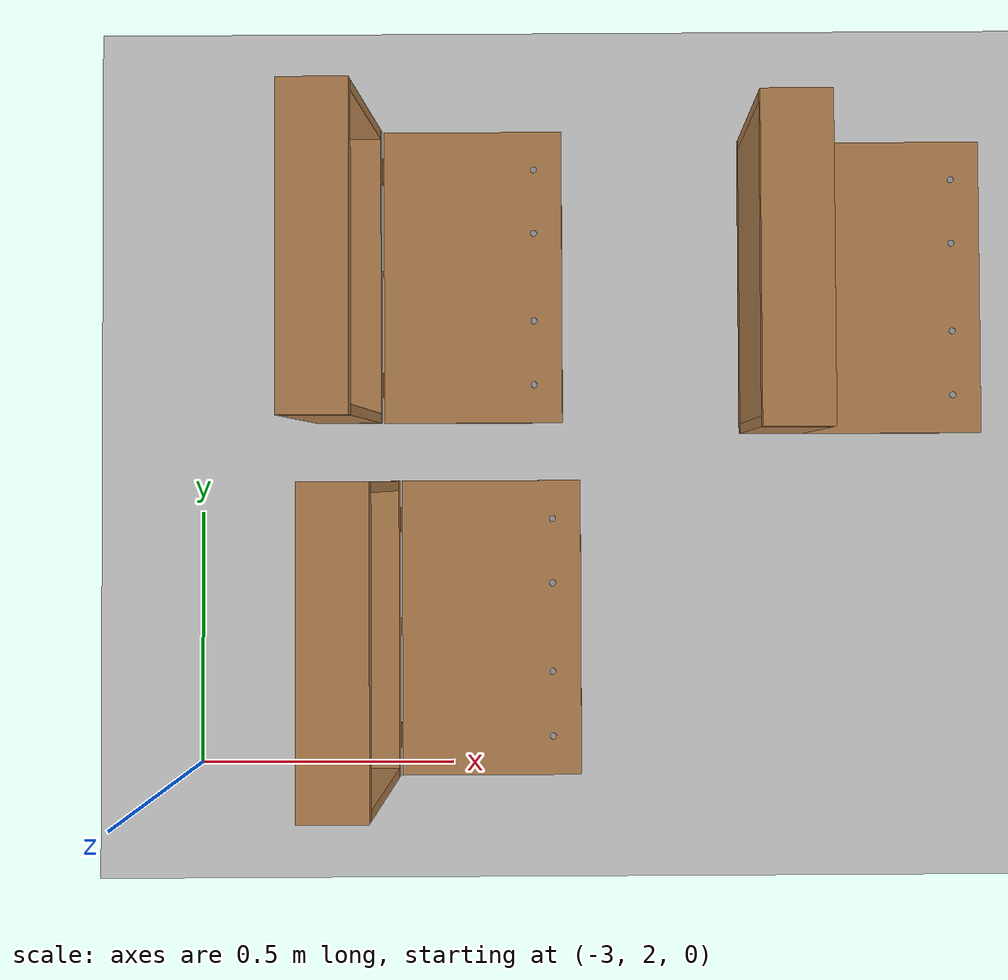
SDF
<sdf version="1.6">
 <world name="default">
  <model name="ground_plane">
   <static>1</static>
   <link name="link">
    <collision name="collision">
     <geometry><plane><normal>0 0 1</normal><size>100 100</size></plane></geometry>
     <surface><friction><ode><mu>100</mu><mu2>50</mu2></ode></friction></surface>
    </collision>
    <visual name="visual">
     <cast_shadows>0</cast_shadows>
     <geometry><plane><normal>0 0 1</normal><size>100 100</size></plane></geometry>
     <material>
      <script><uri>file://media/materials/scripts/gazebo.material</uri><name>Gazebo/Grey</name></script>
     </material>
    </visual>
   </link>
  </model>
  <model name="wooden_case">
   <link name="base">
    <pose>0 0 0.024 0 -0 0</pose>
    <inertial>
     <pose>-0.022184 0 0.171592 0 -0 0</pose>
     <mass>3.96264</mass>
     <inertia>
      <ixx>0.213536</ixx>
      <ixy>0</ixy>
      <ixz>0.000779377</ixz>
      <iyy>0.0708943</iyy>
      <iyz>0</iyz>
      <izz>0.154604</izz>
     </inertia>
    </inertial>
    <collision name="collision_back">
     <pose>-0.053975 0 0.1778 0 -0 0</pose>
     <geometry><box><size>0.01905 0.5461 0.3175</size></box></geometry>
     <surface>
      <contact>
       <poissons_ratio>0.347</poissons_ratio>
       <elastic_modulus>8.8e+09</elastic_modulus>
       <ode><kp>100000</kp><kd>100</kd><max_vel>100</max_vel><min_depth>0.001</min_depth></ode>
      </contact>
      <friction>
       <torsional>
        <coefficient>1</coefficient>
        <use_patch_radius>0</use_patch_radius>
        <surface_radius>0.01</surface_radius>
       </torsional>
      </friction>
     </surface>
    </collision>
    <visual name="visual_back">
     <pose>-0.053975 0 0.1778 0 -0 0</pose>
     <geometry><box><size>0.01905 0.5461 0.3175</size></box></geometry>
     <material>
      <script><uri>file://media/materials/scripts/gazebo.material</uri><name>Gazebo/Wood</name></script>
     </material>
    </visual>
    <collision name="collision_bottom">
     <pose>0 0 0.009525 0 -0 0</pose>
     <geometry><box><size>0.127 0.5842 0.01905</size></box></geometry>
     <surface>
      <contact>
       <poissons_ratio>0.347</poissons_ratio>
       <elastic_modulus>8.8e+09</elastic_modulus>
       <ode><kp>100000</kp><kd>100</kd><max_vel>100</max_vel><min_depth>0.001</min_depth></ode>
      </contact>
      <friction>
       <torsional>
        <coefficient>1</coefficient>
        <use_patch_radius>0</use_patch_radius>
        <surface_radius>0.01</surface_radius>
       </torsional>
      </friction>
     </surface>
    </collision>
    <visual name="visual_bottom">
     <pose>0 0 0.009525 0 -0 0</pose>
     <geometry><box><size>0.127 0.5842 0.01905</size></box></geometry>
     <material>
      <script><uri>file://media/materials/scripts/gazebo.material</uri><name>Gazebo/Wood</name></script>
     </material>
    </visual>
    <collision name="collision_top">
     <pose>0 0 0.346075 0 -0 0</pose>
     <geometry><box><size>0.127 0.5842 0.01905</size></box></geometry>
     <surface>
      <contact>
       <poissons_ratio>0.347</poissons_ratio>
       <elastic_modulus>8.8e+09</elastic_modulus>
       <ode><kp>100000</kp><kd>100</kd><max_vel>100</max_vel><min_depth>0.001</min_depth></ode>
      </contact>
      <friction>
       <torsional>
        <coefficient>1</coefficient>
        <use_patch_radius>0</use_patch_radius>
        <surface_radius>0.01</surface_radius>
       </torsional>
      </friction>
     </surface>
    </collision>
    <visual name="visual_top">
     <pose>0 0 0.346075 0 -0 0</pose>
     <geometry><box><size>0.127 0.5842 0.01905</size></box></geometry>
     <material>
      <script><uri>file://media/materials/scripts/gazebo.material</uri><name>Gazebo/Wood</name></script>
     </material>
    </visual>
    <collision name="collision_left">
     <pose>0 -0.282575 0.1778 0 -0 0</pose>
     <geometry><box><size>0.127 0.01905 0.3175</size></box></geometry>
     <surface>
      <contact>
       <poissons_ratio>0.347</poissons_ratio>
       <elastic_modulus>8.8e+09</elastic_modulus>
       <ode><kp>100000</kp><kd>100</kd><max_vel>100</max_vel><min_depth>0.001</min_depth></ode>
      </contact>
      <friction>
       <torsional>
        <coefficient>1</coefficient>
        <use_patch_radius>0</use_patch_radius>
        <surface_radius>0.01</surface_radius>
       </torsional>
      </friction>
     </surface>
    </collision>
    <visual name="visual_left">
     <pose>0 -0.282575 0.1778 0 -0 0</pose>
     <geometry><box><size>0.127 0.01905 0.3175</size></box></geometry>
     <material>
      <script><uri>file://media/materials/scripts/gazebo.material</uri><name>Gazebo/Wood</name></script>
     </material>
    </visual>
    <collision name="collision_right">
     <pose>0 0.282575 0.1778 0 -0 0</pose>
     <geometry><box><size>0.127 0.01905 0.3175</size></box></geometry>
     <surface>
      <contact>
       <poissons_ratio>0.347</poissons_ratio>
       <elastic_modulus>8.8e+09</elastic_modulus>
       <ode><kp>100000</kp><kd>100</kd><max_vel>100</max_vel><min_depth>0.001</min_depth></ode>
      </contact>
      <friction>
       <torsional>
        <coefficient>1</coefficient>
        <use_patch_radius>0</use_patch_radius>
        <surface_radius>0.01</surface_radius>
       </torsional>
      </friction>
     </surface>
    </collision>
    <visual name="visual_right">
     <pose>0 0.282575 0.1778 0 -0 0</pose>
     <geometry><box><size>0.127 0.01905 0.3175</size></box></geometry>
     <material>
      <script><uri>file://media/materials/scripts/gazebo.material</uri><name>Gazebo/Wood</name></script>
     </material>
    </visual>
    <collision name="collision_block_left">
     <pose>0.0095 -0.2151 -0.012 0 -0 0</pose>
     <geometry><box><size>0.108 0.05 0.024</size></box></geometry>
     <surface>
      <contact>
       <poissons_ratio>0.347</poissons_ratio>
       <elastic_modulus>8.8e+09</elastic_modulus>
       <ode><kp>100000</kp><kd>100</kd><max_vel>100</max_vel><min_depth>0.001</min_depth></ode>
      </contact>
      <friction>
       <torsional>
        <coefficient>1</coefficient>
        <use_patch_radius>0</use_patch_radius>
        <surface_radius>0.01</surface_radius>
       </torsional>
      </friction>
     </surface>
    </collision>
    <visual name="visual_block_left">
     <pose>0.0095 -0.2151 -0.012 0 -0 0</pose>
     <geometry><box><size>0.108 0.05 0.024</size></box></geometry>
     <material>
      <script><uri>file://media/materials/scripts/gazebo.material</uri><name>Gazebo/Wood</name></script>
     </material>
    </visual>
    <collision name="collision_block_right">
     <pose>0.0095 0.2151 -0.012 0 -0 0</pose>
     <geometry><box><size>0.108 0.05 0.024</size></box></geometry>
     <surface>
      <contact>
       <poissons_ratio>0.347</poissons_ratio>
       <elastic_modulus>8.8e+09</elastic_modulus>
       <ode><kp>100000</kp><kd>100</kd><max_vel>100</max_vel><min_depth>0.001</min_depth></ode>
      </contact>
      <friction>
       <torsional>
        <coefficient>1</coefficient>
        <use_patch_radius>0</use_patch_radius>
        <surface_radius>0.01</surface_radius>
       </torsional>
      </friction>
     </surface>
    </collision>
    <visual name="visual_block_right">
     <pose>0.0095 0.2151 -0.012 0 -0 0</pose>
     <geometry><box><size>0.108 0.05 0.024</size></box></geometry>
     <material>
      <script><uri>file://media/materials/scripts/gazebo.material</uri><name>Gazebo/Wood</name></script>
     </material>
    </visual>
   </link>
   <link name="lid">
    <pose>0.243775 0 0.009525 0 -0 0</pose>
    <inertial>
     <mass>1.97874</mass>
     <inertia>
      <ixx>0.0563367</ixx>
      <ixy>0</ixy>
      <ixz>0</ixz>
      <iyy>0.020911</iyy>
      <iyz>0</iyz>
      <izz>0.0771281</izz>
     </inertia>
    </inertial>
    <collision name="collision">
     <geometry><box><size>0.3556 0.5842 0.01905</size></box></geometry>
     <surface>
      <contact>
       <poissons_ratio>0.347</poissons_ratio>
       <elastic_modulus>8.8e+09</elastic_modulus>
       <ode><kp>100000</kp><kd>100</kd><max_vel>100</max_vel><min_depth>0.001</min_depth></ode>
      </contact>
      <friction>
       <torsional>
        <coefficient>1</coefficient>
        <use_patch_radius>0</use_patch_radius>
        <surface_radius>0.01</surface_radius>
       </torsional>
      </friction>
     </surface>
    </collision>
    <visual name="visual">
     <geometry><box><size>0.3556 0.5842 0.01905</size></box></geometry>
     <material>
      <script><uri>file://media/materials/scripts/gazebo.material</uri><name>Gazebo/Wood</name></script>
     </material>
    </visual>
    <visual name="tee_nut_1">
     <pose>0.122 -0.216 0 0 -0 0</pose>
     <geometry><cylinder><radius>0.00635</radius><length>0.0192405</length></cylinder></geometry>
     <material>
      <script><uri>file://media/materials/scripts/gazebo.material</uri><name>Gazebo/Grey</name></script>
     </material>
    </visual>
    <visual name="tee_nut_2">
     <pose>0.122 -0.088 0 0 -0 0</pose>
     <geometry><cylinder><radius>0.00635</radius><length>0.0192405</length></cylinder></geometry>
     <material>
      <script><uri>file://media/materials/scripts/gazebo.material</uri><name>Gazebo/Grey</name></script>
     </material>
    </visual>
    <visual name="tee_nut_3">
     <pose>0.122 0.088 0 0 -0 0</pose>
     <geometry><cylinder><radius>0.00635</radius><length>0.0192405</length></cylinder></geometry>
     <material>
      <script><uri>file://media/materials/scripts/gazebo.material</uri><name>Gazebo/Grey</name></script>
     </material>
    </visual>
    <visual name="tee_nut_4">
     <pose>0.122 0.216 0 0 -0 0</pose>
     <geometry><cylinder><radius>0.00635</radius><length>0.0192405</length></cylinder></geometry>
     <material>
      <script><uri>file://media/materials/scripts/gazebo.material</uri><name>Gazebo/Grey</name></script>
     </material>
    </visual>
   </link>
   <joint name="lid_hinge" type="revolute">
    <pose>-0.1778 0 0.01905 0 -0 0</pose>
    <parent>base</parent>
    <child>lid</child>
    <axis>
     <xyz>0 1 0</xyz>
     <limit><upper>0.523599</upper><lower>-1.5708</lower></limit>
     <use_parent_model_frame>0</use_parent_model_frame>
     <dynamics><spring_reference>0</spring_reference><spring_stiffness>0</spring_stiffness></dynamics>
    </axis>
   </joint>
   <pose>-2.70041 2.96774 -0.001057 0 -0.000428 0</pose>
  </model>
  <model name="wooden_case_0">
   <link name="base">
    <pose>0 0 0.024 0 -0 0</pose>
    <inertial>
     <pose>-0.022184 0 0.171592 0 -0 0</pose>
     <mass>3.96264</mass>
     <inertia>
      <ixx>0.213536</ixx>
      <ixy>0</ixy>
      <ixz>0.000779377</ixz>
      <iyy>0.0708943</iyy>
      <iyz>0</iyz>
      <izz>0.154604</izz>
     </inertia>
    </inertial>
    <collision name="collision_back">
     <pose>-0.053975 0 0.1778 0 -0 0</pose>
     <geometry><box><size>0.01905 0.5461 0.3175</size></box></geometry>
     <surface>
      <contact>
       <poissons_ratio>0.347</poissons_ratio>
       <elastic_modulus>8.8e+09</elastic_modulus>
       <ode><kp>100000</kp><kd>100</kd><max_vel>100</max_vel><min_depth>0.001</min_depth></ode>
      </contact>
      <friction>
       <torsional>
        <coefficient>1</coefficient>
        <use_patch_radius>0</use_patch_radius>
        <surface_radius>0.01</surface_radius>
       </torsional>
      </friction>
     </surface>
    </collision>
    <visual name="visual_back">
     <pose>-0.053975 0 0.1778 0 -0 0</pose>
     <geometry><box><size>0.01905 0.5461 0.3175</size></box></geometry>
     <material>
      <script><uri>file://media/materials/scripts/gazebo.material</uri><name>Gazebo/Wood</name></script>
     </material>
    </visual>
    <collision name="collision_bottom">
     <pose>0 0 0.009525 0 -0 0</pose>
     <geometry><box><size>0.127 0.5842 0.01905</size></box></geometry>
     <surface>
      <contact>
       <poissons_ratio>0.347</poissons_ratio>
       <elastic_modulus>8.8e+09</elastic_modulus>
       <ode><kp>100000</kp><kd>100</kd><max_vel>100</max_vel><min_depth>0.001</min_depth></ode>
      </contact>
      <friction>
       <torsional>
        <coefficient>1</coefficient>
        <use_patch_radius>0</use_patch_radius>
        <surface_radius>0.01</surface_radius>
       </torsional>
      </friction>
     </surface>
    </collision>
    <visual name="visual_bottom">
     <pose>0 0 0.009525 0 -0 0</pose>
     <geometry><box><size>0.127 0.5842 0.01905</size></box></geometry>
     <material>
      <script><uri>file://media/materials/scripts/gazebo.material</uri><name>Gazebo/Wood</name></script>
     </material>
    </visual>
    <collision name="collision_top">
     <pose>0 0 0.346075 0 -0 0</pose>
     <geometry><box><size>0.127 0.5842 0.01905</size></box></geometry>
     <surface>
      <contact>
       <poissons_ratio>0.347</poissons_ratio>
       <elastic_modulus>8.8e+09</elastic_modulus>
       <ode><kp>100000</kp><kd>100</kd><max_vel>100</max_vel><min_depth>0.001</min_depth></ode>
      </contact>
      <friction>
       <torsional>
        <coefficient>1</coefficient>
        <use_patch_radius>0</use_patch_radius>
        <surface_radius>0.01</surface_radius>
       </torsional>
      </friction>
     </surface>
    </collision>
    <visual name="visual_top">
     <pose>0 0 0.346075 0 -0 0</pose>
     <geometry><box><size>0.127 0.5842 0.01905</size></box></geometry>
     <material>
      <script><uri>file://media/materials/scripts/gazebo.material</uri><name>Gazebo/Wood</name></script>
     </material>
    </visual>
    <collision name="collision_left">
     <pose>0 -0.282575 0.1778 0 -0 0</pose>
     <geometry><box><size>0.127 0.01905 0.3175</size></box></geometry>
     <surface>
      <contact>
       <poissons_ratio>0.347</poissons_ratio>
       <elastic_modulus>8.8e+09</elastic_modulus>
       <ode><kp>100000</kp><kd>100</kd><max_vel>100</max_vel><min_depth>0.001</min_depth></ode>
      </contact>
      <friction>
       <torsional>
        <coefficient>1</coefficient>
        <use_patch_radius>0</use_patch_radius>
        <surface_radius>0.01</surface_radius>
       </torsional>
      </friction>
     </surface>
    </collision>
    <visual name="visual_left">
     <pose>0 -0.282575 0.1778 0 -0 0</pose>
     <geometry><box><size>0.127 0.01905 0.3175</size></box></geometry>
     <material>
      <script><uri>file://media/materials/scripts/gazebo.material</uri><name>Gazebo/Wood</name></script>
     </material>
    </visual>
    <collision name="collision_right">
     <pose>0 0.282575 0.1778 0 -0 0</pose>
     <geometry><box><size>0.127 0.01905 0.3175</size></box></geometry>
     <surface>
      <contact>
       <poissons_ratio>0.347</poissons_ratio>
       <elastic_modulus>8.8e+09</elastic_modulus>
       <ode><kp>100000</kp><kd>100</kd><max_vel>100</max_vel><min_depth>0.001</min_depth></ode>
      </contact>
      <friction>
       <torsional>
        <coefficient>1</coefficient>
        <use_patch_radius>0</use_patch_radius>
        <surface_radius>0.01</surface_radius>
       </torsional>
      </friction>
     </surface>
    </collision>
    <visual name="visual_right">
     <pose>0 0.282575 0.1778 0 -0 0</pose>
     <geometry><box><size>0.127 0.01905 0.3175</size></box></geometry>
     <material>
      <script><uri>file://media/materials/scripts/gazebo.material</uri><name>Gazebo/Wood</name></script>
     </material>
    </visual>
    <collision name="collision_block_left">
     <pose>0.0095 -0.2151 -0.012 0 -0 0</pose>
     <geometry><box><size>0.108 0.05 0.024</size></box></geometry>
     <surface>
      <contact>
       <poissons_ratio>0.347</poissons_ratio>
       <elastic_modulus>8.8e+09</elastic_modulus>
       <ode><kp>100000</kp><kd>100</kd><max_vel>100</max_vel><min_depth>0.001</min_depth></ode>
      </contact>
      <friction>
       <torsional>
        <coefficient>1</coefficient>
        <use_patch_radius>0</use_patch_radius>
        <surface_radius>0.01</surface_radius>
       </torsional>
      </friction>
     </surface>
    </collision>
    <visual name="visual_block_left">
     <pose>0.0095 -0.2151 -0.012 0 -0 0</pose>
     <geometry><box><size>0.108 0.05 0.024</size></box></geometry>
     <material>
      <script><uri>file://media/materials/scripts/gazebo.material</uri><name>Gazebo/Wood</name></script>
     </material>
    </visual>
    <collision name="collision_block_right">
     <pose>0.0095 0.2151 -0.012 0 -0 0</pose>
     <geometry><box><size>0.108 0.05 0.024</size></box></geometry>
     <surface>
      <contact>
       <poissons_ratio>0.347</poissons_ratio>
       <elastic_modulus>8.8e+09</elastic_modulus>
       <ode><kp>100000</kp><kd>100</kd><max_vel>100</max_vel><min_depth>0.001</min_depth></ode>
      </contact>
      <friction>
       <torsional>
        <coefficient>1</coefficient>
        <use_patch_radius>0</use_patch_radius>
        <surface_radius>0.01</surface_radius>
       </torsional>
      </friction>
     </surface>
    </collision>
    <visual name="visual_block_right">
     <pose>0.0095 0.2151 -0.012 0 -0 0</pose>
     <geometry><box><size>0.108 0.05 0.024</size></box></geometry>
     <material>
      <script><uri>file://media/materials/scripts/gazebo.material</uri><name>Gazebo/Wood</name></script>
     </material>
    </visual>
   </link>
   <link name="lid">
    <pose>0.243775 0 0.009525 0 -0 0</pose>
    <inertial>
     <mass>1.97874</mass>
     <inertia>
      <ixx>0.0563367</ixx>
      <ixy>0</ixy>
      <ixz>0</ixz>
      <iyy>0.020911</iyy>
      <iyz>0</iyz>
      <izz>0.0771281</izz>
     </inertia>
    </inertial>
    <collision name="collision">
     <geometry><box><size>0.3556 0.5842 0.01905</size></box></geometry>
     <surface>
      <contact>
       <poissons_ratio>0.347</poissons_ratio>
       <elastic_modulus>8.8e+09</elastic_modulus>
       <ode><kp>100000</kp><kd>100</kd><max_vel>100</max_vel><min_depth>0.001</min_depth></ode>
      </contact>
      <friction>
       <torsional>
        <coefficient>1</coefficient>
        <use_patch_radius>0</use_patch_radius>
        <surface_radius>0.01</surface_radius>
       </torsional>
      </friction>
     </surface>
    </collision>
    <visual name="visual">
     <geometry><box><size>0.3556 0.5842 0.01905</size></box></geometry>
     <material>
      <script><uri>file://media/materials/scripts/gazebo.material</uri><name>Gazebo/Wood</name></script>
     </material>
    </visual>
    <visual name="tee_nut_1">
     <pose>0.122 -0.216 0 0 -0 0</pose>
     <geometry><cylinder><radius>0.00635</radius><length>0.0192405</length></cylinder></geometry>
     <material>
      <script><uri>file://media/materials/scripts/gazebo.material</uri><name>Gazebo/Grey</name></script>
     </material>
    </visual>
    <visual name="tee_nut_2">
     <pose>0.122 -0.088 0 0 -0 0</pose>
     <geometry><cylinder><radius>0.00635</radius><length>0.0192405</length></cylinder></geometry>
     <material>
      <script><uri>file://media/materials/scripts/gazebo.material</uri><name>Gazebo/Grey</name></script>
     </material>
    </visual>
    <visual name="tee_nut_3">
     <pose>0.122 0.088 0 0 -0 0</pose>
     <geometry><cylinder><radius>0.00635</radius><length>0.0192405</length></cylinder></geometry>
     <material>
      <script><uri>file://media/materials/scripts/gazebo.material</uri><name>Gazebo/Grey</name></script>
     </material>
    </visual>
    <visual name="tee_nut_4">
     <pose>0.122 0.216 0 0 -0 0</pose>
     <geometry><cylinder><radius>0.00635</radius><length>0.0192405</length></cylinder></geometry>
     <material>
      <script><uri>file://media/materials/scripts/gazebo.material</uri><name>Gazebo/Grey</name></script>
     </material>
    </visual>
   </link>
   <joint name="lid_hinge" type="revolute">
    <pose>-0.1778 0 0.01905 0 -0 0</pose>
    <parent>base</parent>
    <child>lid</child>
    <axis>
     <xyz>0 1 0</xyz>
     <limit><upper>0.523599</upper><lower>-1.5708</lower></limit>
     <use_parent_model_frame>0</use_parent_model_frame>
     <dynamics><spring_reference>0</spring_reference><spring_stiffness>0</spring_stiffness></dynamics>
    </axis>
   </joint>
   <pose>-2.66545 2.26839 -0.001057 0 -0.000429 0</pose>
  </model>
  <model name="wooden_case_1">
   <link name="base">
    <pose>0 0 0.024 0 -0 0</pose>
    <inertial>
     <pose>-0.022184 0 0.171592 0 -0 0</pose>
     <mass>3.96264</mass>
     <inertia>
      <ixx>0.213536</ixx>
      <ixy>0</ixy>
      <ixz>0.000779377</ixz>
      <iyy>0.0708943</iyy>
      <iyz>0</iyz>
      <izz>0.154604</izz>
     </inertia>
    </inertial>
    <collision name="collision_back">
     <pose>-0.053975 0 0.1778 0 -0 0</pose>
     <geometry><box><size>0.01905 0.5461 0.3175</size></box></geometry>
     <surface>
      <contact>
       <poissons_ratio>0.347</poissons_ratio>
       <elastic_modulus>8.8e+09</elastic_modulus>
       <ode><kp>100000</kp><kd>100</kd><max_vel>100</max_vel><min_depth>0.001</min_depth></ode>
      </contact>
      <friction>
       <torsional>
        <coefficient>1</coefficient>
        <use_patch_radius>0</use_patch_radius>
        <surface_radius>0.01</surface_radius>
       </torsional>
      </friction>
     </surface>
    </collision>
    <visual name="visual_back">
     <pose>-0.053975 0 0.1778 0 -0 0</pose>
     <geometry><box><size>0.01905 0.5461 0.3175</size></box></geometry>
     <material>
      <script><uri>file://media/materials/scripts/gazebo.material</uri><name>Gazebo/Wood</name></script>
     </material>
    </visual>
    <collision name="collision_bottom">
     <pose>0 0 0.009525 0 -0 0</pose>
     <geometry><box><size>0.127 0.5842 0.01905</size></box></geometry>
     <surface>
      <contact>
       <poissons_ratio>0.347</poissons_ratio>
       <elastic_modulus>8.8e+09</elastic_modulus>
       <ode><kp>100000</kp><kd>100</kd><max_vel>100</max_vel><min_depth>0.001</min_depth></ode>
      </contact>
      <friction>
       <torsional>
        <coefficient>1</coefficient>
        <use_patch_radius>0</use_patch_radius>
        <surface_radius>0.01</surface_radius>
       </torsional>
      </friction>
     </surface>
    </collision>
    <visual name="visual_bottom">
     <pose>0 0 0.009525 0 -0 0</pose>
     <geometry><box><size>0.127 0.5842 0.01905</size></box></geometry>
     <material>
      <script><uri>file://media/materials/scripts/gazebo.material</uri><name>Gazebo/Wood</name></script>
     </material>
    </visual>
    <collision name="collision_top">
     <pose>0 0 0.346075 0 -0 0</pose>
     <geometry><box><size>0.127 0.5842 0.01905</size></box></geometry>
     <surface>
      <contact>
       <poissons_ratio>0.347</poissons_ratio>
       <elastic_modulus>8.8e+09</elastic_modulus>
       <ode><kp>100000</kp><kd>100</kd><max_vel>100</max_vel><min_depth>0.001</min_depth></ode>
      </contact>
      <friction>
       <torsional>
        <coefficient>1</coefficient>
        <use_patch_radius>0</use_patch_radius>
        <surface_radius>0.01</surface_radius>
       </torsional>
      </friction>
     </surface>
    </collision>
    <visual name="visual_top">
     <pose>0 0 0.346075 0 -0 0</pose>
     <geometry><box><size>0.127 0.5842 0.01905</size></box></geometry>
     <material>
      <script><uri>file://media/materials/scripts/gazebo.material</uri><name>Gazebo/Wood</name></script>
     </material>
    </visual>
    <collision name="collision_left">
     <pose>0 -0.282575 0.1778 0 -0 0</pose>
     <geometry><box><size>0.127 0.01905 0.3175</size></box></geometry>
     <surface>
      <contact>
       <poissons_ratio>0.347</poissons_ratio>
       <elastic_modulus>8.8e+09</elastic_modulus>
       <ode><kp>100000</kp><kd>100</kd><max_vel>100</max_vel><min_depth>0.001</min_depth></ode>
      </contact>
      <friction>
       <torsional>
        <coefficient>1</coefficient>
        <use_patch_radius>0</use_patch_radius>
        <surface_radius>0.01</surface_radius>
       </torsional>
      </friction>
     </surface>
    </collision>
    <visual name="visual_left">
     <pose>0 -0.282575 0.1778 0 -0 0</pose>
     <geometry><box><size>0.127 0.01905 0.3175</size></box></geometry>
     <material>
      <script><uri>file://media/materials/scripts/gazebo.material</uri><name>Gazebo/Wood</name></script>
     </material>
    </visual>
    <collision name="collision_right">
     <pose>0 0.282575 0.1778 0 -0 0</pose>
     <geometry><box><size>0.127 0.01905 0.3175</size></box></geometry>
     <surface>
      <contact>
       <poissons_ratio>0.347</poissons_ratio>
       <elastic_modulus>8.8e+09</elastic_modulus>
       <ode><kp>100000</kp><kd>100</kd><max_vel>100</max_vel><min_depth>0.001</min_depth></ode>
      </contact>
      <friction>
       <torsional>
        <coefficient>1</coefficient>
        <use_patch_radius>0</use_patch_radius>
        <surface_radius>0.01</surface_radius>
       </torsional>
      </friction>
     </surface>
    </collision>
    <visual name="visual_right">
     <pose>0 0.282575 0.1778 0 -0 0</pose>
     <geometry><box><size>0.127 0.01905 0.3175</size></box></geometry>
     <material>
      <script><uri>file://media/materials/scripts/gazebo.material</uri><name>Gazebo/Wood</name></script>
     </material>
    </visual>
    <collision name="collision_block_left">
     <pose>0.0095 -0.2151 -0.012 0 -0 0</pose>
     <geometry><box><size>0.108 0.05 0.024</size></box></geometry>
     <surface>
      <contact>
       <poissons_ratio>0.347</poissons_ratio>
       <elastic_modulus>8.8e+09</elastic_modulus>
       <ode><kp>100000</kp><kd>100</kd><max_vel>100</max_vel><min_depth>0.001</min_depth></ode>
      </contact>
      <friction>
       <torsional>
        <coefficient>1</coefficient>
        <use_patch_radius>0</use_patch_radius>
        <surface_radius>0.01</surface_radius>
       </torsional>
      </friction>
     </surface>
    </collision>
    <visual name="visual_block_left">
     <pose>0.0095 -0.2151 -0.012 0 -0 0</pose>
     <geometry><box><size>0.108 0.05 0.024</size></box></geometry>
     <material>
      <script><uri>file://media/materials/scripts/gazebo.material</uri><name>Gazebo/Wood</name></script>
     </material>
    </visual>
    <collision name="collision_block_right">
     <pose>0.0095 0.2151 -0.012 0 -0 0</pose>
     <geometry><box><size>0.108 0.05 0.024</size></box></geometry>
     <surface>
      <contact>
       <poissons_ratio>0.347</poissons_ratio>
       <elastic_modulus>8.8e+09</elastic_modulus>
       <ode><kp>100000</kp><kd>100</kd><max_vel>100</max_vel><min_depth>0.001</min_depth></ode>
      </contact>
      <friction>
       <torsional>
        <coefficient>1</coefficient>
        <use_patch_radius>0</use_patch_radius>
        <surface_radius>0.01</surface_radius>
       </torsional>
      </friction>
     </surface>
    </collision>
    <visual name="visual_block_right">
     <pose>0.0095 0.2151 -0.012 0 -0 0</pose>
     <geometry><box><size>0.108 0.05 0.024</size></box></geometry>
     <material>
      <script><uri>file://media/materials/scripts/gazebo.material</uri><name>Gazebo/Wood</name></script>
     </material>
    </visual>
   </link>
   <link name="lid">
    <pose>0.243775 0 0.009525 0 -0 0</pose>
    <inertial>
     <mass>1.97874</mass>
     <inertia>
      <ixx>0.0563367</ixx>
      <ixy>0</ixy>
      <ixz>0</ixz>
      <iyy>0.020911</iyy>
      <iyz>0</iyz>
      <izz>0.0771281</izz>
     </inertia>
    </inertial>
    <collision name="collision">
     <geometry><box><size>0.3556 0.5842 0.01905</size></box></geometry>
     <surface>
      <contact>
       <poissons_ratio>0.347</poissons_ratio>
       <elastic_modulus>8.8e+09</elastic_modulus>
       <ode><kp>100000</kp><kd>100</kd><max_vel>100</max_vel><min_depth>0.001</min_depth></ode>
      </contact>
      <friction>
       <torsional>
        <coefficient>1</coefficient>
        <use_patch_radius>0</use_patch_radius>
        <surface_radius>0.01</surface_radius>
       </torsional>
      </friction>
     </surface>
    </collision>
    <visual name="visual">
     <geometry><box><size>0.3556 0.5842 0.01905</size></box></geometry>
     <material>
      <script><uri>file://media/materials/scripts/gazebo.material</uri><name>Gazebo/Wood</name></script>
     </material>
    </visual>
    <visual name="tee_nut_1">
     <pose>0.122 -0.216 0 0 -0 0</pose>
     <geometry><cylinder><radius>0.00635</radius><length>0.0192405</length></cylinder></geometry>
     <material>
      <script><uri>file://media/materials/scripts/gazebo.material</uri><name>Gazebo/Grey</name></script>
     </material>
    </visual>
    <visual name="tee_nut_2">
     <pose>0.122 -0.088 0 0 -0 0</pose>
     <geometry><cylinder><radius>0.00635</radius><length>0.0192405</length></cylinder></geometry>
     <material>
      <script><uri>file://media/materials/scripts/gazebo.material</uri><name>Gazebo/Grey</name></script>
     </material>
    </visual>
    <visual name="tee_nut_3">
     <pose>0.122 0.088 0 0 -0 0</pose>
     <geometry><cylinder><radius>0.00635</radius><length>0.0192405</length></cylinder></geometry>
     <material>
      <script><uri>file://media/materials/scripts/gazebo.material</uri><name>Gazebo/Grey</name></script>
     </material>
    </visual>
    <visual name="tee_nut_4">
     <pose>0.122 0.216 0 0 -0 0</pose>
     <geometry><cylinder><radius>0.00635</radius><length>0.0192405</length></cylinder></geometry>
     <material>
      <script><uri>file://media/materials/scripts/gazebo.material</uri><name>Gazebo/Grey</name></script>
     </material>
    </visual>
   </link>
   <joint name="lid_hinge" type="revolute">
    <pose>-0.1778 0 0.01905 0 -0 0</pose>
    <parent>base</parent>
    <child>lid</child>
    <axis>
     <xyz>0 1 0</xyz>
     <limit><upper>0.523599</upper><lower>-1.5708</lower></limit>
     <use_parent_model_frame>0</use_parent_model_frame>
     <dynamics><spring_reference>0</spring_reference><spring_stiffness>0</spring_stiffness></dynamics>
    </axis>
   </joint>
   <pose>-1.86336 2.94315 -0.001057 0 -0.000429 0</pose>
  </model>
 </world>
</sdf>
